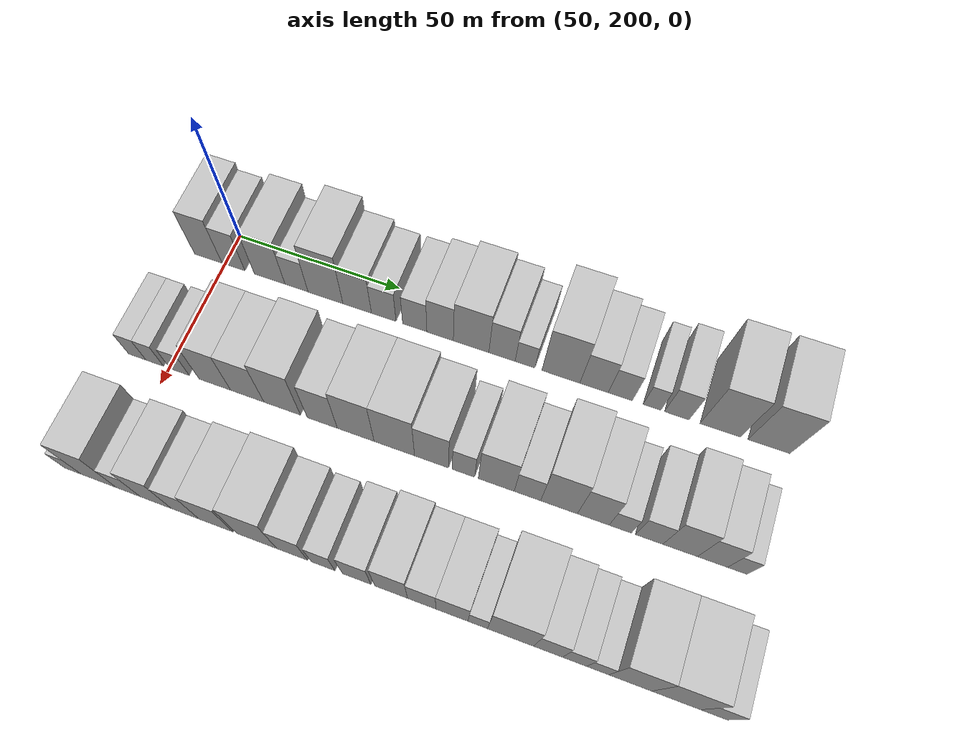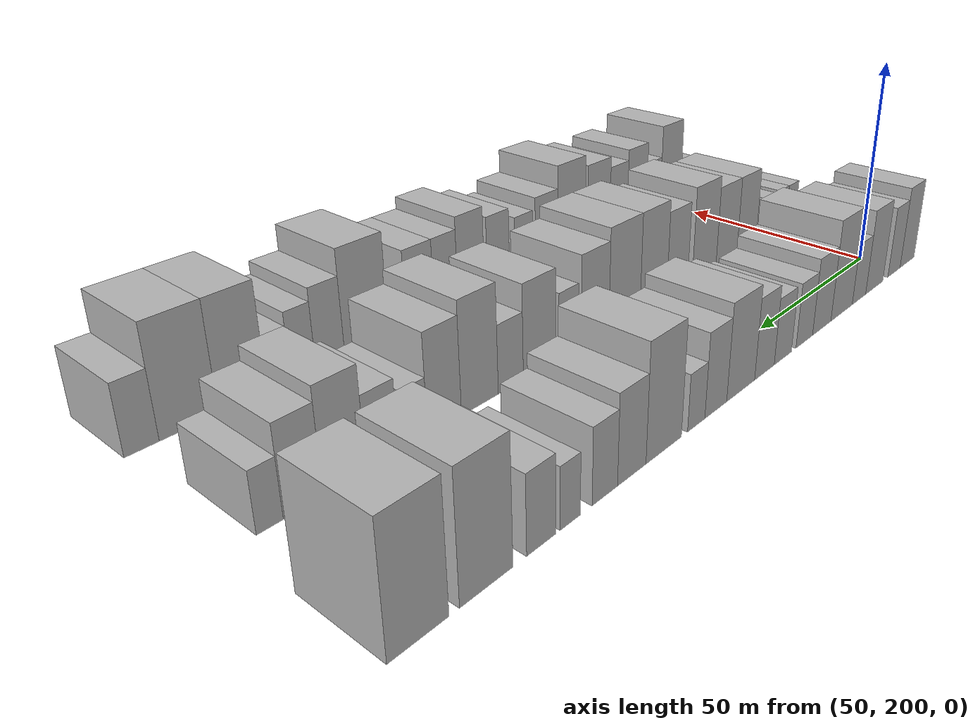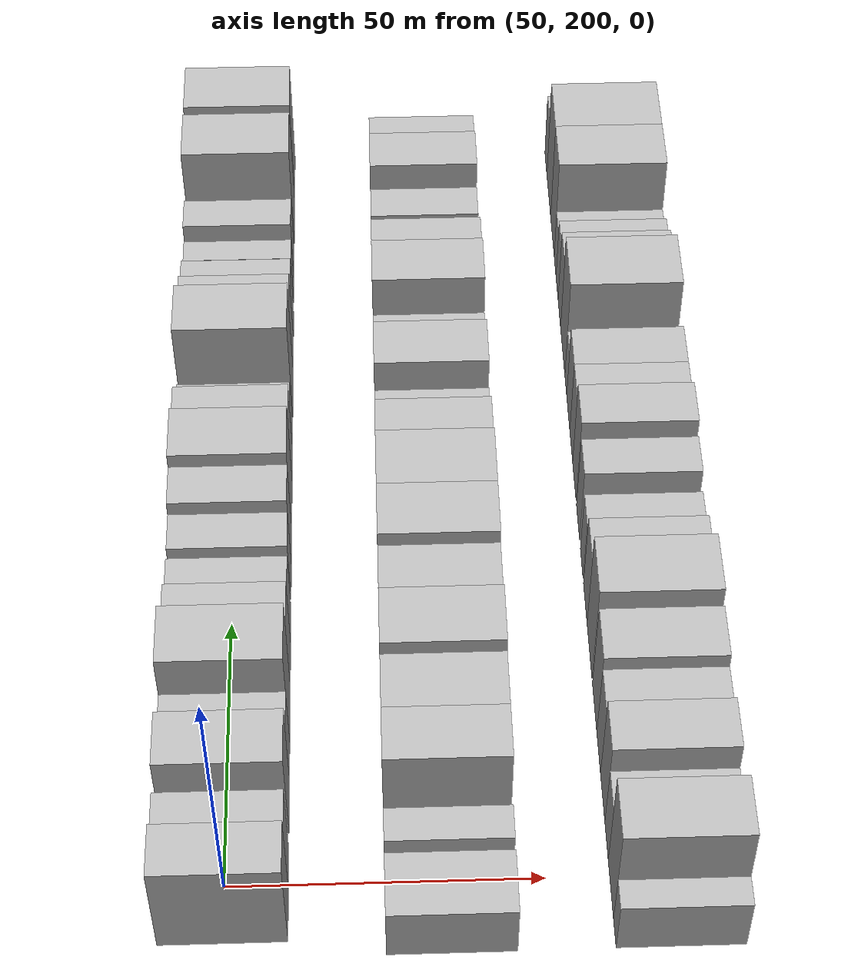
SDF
<sdf version="1.6">
 <world name="default">
  <model name="building_63">
   <static>1</static>
   <pose>50.0000 194.6372 0 0.000000 0.000000 0.000000</pose>
   <link name="link">
    <pose>0 0 10.50 0 0 0</pose>
    <collision name="collision"><geometry><box><size>20.0000 8.7773 21.0000</size></box></geometry></collision>
    <visual name="visual">
     <cast_shadows>0</cast_shadows>
     <geometry><box><size>20.0000 8.7773 21.0000</size></box></geometry>
     <material>
      <script>
       <uri>model://HANNAS_wall/materials/scripts</uri>
       <uri>model://HANNAS_wall/materials/textures</uri>
       <name>vrc/HANNAS_wall</name>
      </script>
     </material>
    </visual>
   </link>
  </model>
  <model name="building_64">
   <static>1</static>
   <pose>50.0000 202.6644 0 0.000000 0.000000 0.000000</pose>
   <link name="link">
    <pose>0 0 9.00 0 0 0</pose>
    <collision name="collision"><geometry><box><size>20.0000 7.2770 18.0000</size></box></geometry></collision>
    <visual name="visual">
     <cast_shadows>0</cast_shadows>
     <geometry><box><size>20.0000 7.2770 18.0000</size></box></geometry>
     <material>
      <script>
       <uri>model://HANNAS_wall/materials/scripts</uri>
       <uri>model://HANNAS_wall/materials/textures</uri>
       <name>vrc/HANNAS_wall</name>
      </script>
     </material>
    </visual>
   </link>
  </model>
  <model name="building_65">
   <static>1</static>
   <pose>50.0000 214.0967 0 0.000000 0.000000 0.000000</pose>
   <link name="link">
    <pose>0 0 10.50 0 0 0</pose>
    <collision name="collision"><geometry><box><size>20.0000 9.5875 21.0000</size></box></geometry></collision>
    <visual name="visual">
     <cast_shadows>0</cast_shadows>
     <geometry><box><size>20.0000 9.5875 21.0000</size></box></geometry>
     <material>
      <script>
       <uri>model://HANNAS_wall/materials/scripts</uri>
       <uri>model://HANNAS_wall/materials/textures</uri>
       <name>vrc/HANNAS_wall</name>
      </script>
     </material>
    </visual>
   </link>
  </model>
  <model name="building_66">
   <static>1</static>
   <pose>50.0000 222.4682 0 0.000000 0.000000 0.000000</pose>
   <link name="link">
    <pose>0 0 7.50 0 0 0</pose>
    <collision name="collision"><geometry><box><size>20.0000 7.1555 15.0000</size></box></geometry></collision>
    <visual name="visual">
     <cast_shadows>0</cast_shadows>
     <geometry><box><size>20.0000 7.1555 15.0000</size></box></geometry>
     <material>
      <script>
       <uri>model://HANNAS_wall/materials/scripts</uri>
       <uri>model://HANNAS_wall/materials/textures</uri>
       <name>vrc/HANNAS_wall</name>
      </script>
     </material>
    </visual>
   </link>
  </model>
  <model name="building_67">
   <static>1</static>
   <pose>50.0000 231.4179 0 0.000000 0.000000 0.000000</pose>
   <link name="link">
    <pose>0 0 12.00 0 0 0</pose>
    <collision name="collision"><geometry><box><size>20.0000 10.7441 24.0000</size></box></geometry></collision>
    <visual name="visual">
     <cast_shadows>0</cast_shadows>
     <geometry><box><size>20.0000 10.7441 24.0000</size></box></geometry>
     <material>
      <script>
       <uri>model://HANNAS_wall/materials/scripts</uri>
       <uri>model://HANNAS_wall/materials/textures</uri>
       <name>vrc/HANNAS_wall</name>
      </script>
     </material>
    </visual>
   </link>
  </model>
  <model name="building_68">
   <static>1</static>
   <pose>50.0000 241.1411 0 0.000000 0.000000 0.000000</pose>
   <link name="link">
    <pose>0 0 9.00 0 0 0</pose>
    <collision name="collision"><geometry><box><size>20.0000 8.7023 18.0000</size></box></geometry></collision>
    <visual name="visual">
     <cast_shadows>0</cast_shadows>
     <geometry><box><size>20.0000 8.7023 18.0000</size></box></geometry>
     <material>
      <script>
       <uri>model://HANNAS_wall/materials/scripts</uri>
       <uri>model://HANNAS_wall/materials/textures</uri>
       <name>vrc/HANNAS_wall</name>
      </script>
     </material>
    </visual>
   </link>
  </model>
  <model name="building_69">
   <static>1</static>
   <pose>50.0000 249.2045 0 0.000000 0.000000 0.000000</pose>
   <link name="link">
    <pose>0 0 7.50 0 0 0</pose>
    <collision name="collision"><geometry><box><size>20.0000 7.4245 15.0000</size></box></geometry></collision>
    <visual name="visual">
     <cast_shadows>0</cast_shadows>
     <geometry><box><size>20.0000 7.4245 15.0000</size></box></geometry>
     <material>
      <script>
       <uri>model://HANNAS_wall/materials/scripts</uri>
       <uri>model://HANNAS_wall/materials/textures</uri>
       <name>vrc/HANNAS_wall</name>
      </script>
     </material>
    </visual>
   </link>
  </model>
  <model name="building_70">
   <static>1</static>
   <pose>50.0000 258.5269 0 0.000000 0.000000 0.000000</pose>
   <link name="link">
    <pose>0 0 7.50 0 0 0</pose>
    <collision name="collision"><geometry><box><size>20.0000 7.2203 15.0000</size></box></geometry></collision>
    <visual name="visual">
     <cast_shadows>0</cast_shadows>
     <geometry><box><size>20.0000 7.2203 15.0000</size></box></geometry>
     <material>
      <script>
       <uri>model://HANNAS_wall/materials/scripts</uri>
       <uri>model://HANNAS_wall/materials/textures</uri>
       <name>vrc/HANNAS_wall</name>
      </script>
     </material>
    </visual>
   </link>
  </model>
  <model name="building_71">
   <static>1</static>
   <pose>50.0000 266.0517 0 0.000000 0.000000 0.000000</pose>
   <link name="link">
    <pose>0 0 9.00 0 0 0</pose>
    <collision name="collision"><geometry><box><size>20.0000 7.8293 18.0000</size></box></geometry></collision>
    <visual name="visual">
     <cast_shadows>0</cast_shadows>
     <geometry><box><size>20.0000 7.8293 18.0000</size></box></geometry>
     <material>
      <script>
       <uri>model://HANNAS_wall/materials/scripts</uri>
       <uri>model://HANNAS_wall/materials/textures</uri>
       <name>vrc/HANNAS_wall</name>
      </script>
     </material>
    </visual>
   </link>
  </model>
  <model name="building_72">
   <static>1</static>
   <pose>50.0000 275.1888 0 0.000000 0.000000 0.000000</pose>
   <link name="link">
    <pose>0 0 10.50 0 0 0</pose>
    <collision name="collision"><geometry><box><size>20.0000 10.4450 21.0000</size></box></geometry></collision>
    <visual name="visual">
     <cast_shadows>0</cast_shadows>
     <geometry><box><size>20.0000 10.4450 21.0000</size></box></geometry>
     <material>
      <script>
       <uri>model://HANNAS_wall/materials/scripts</uri>
       <uri>model://HANNAS_wall/materials/textures</uri>
       <name>vrc/HANNAS_wall</name>
      </script>
     </material>
    </visual>
   </link>
  </model>
  <model name="building_73">
   <static>1</static>
   <pose>50.0000 284.2256 0 0.000000 0.000000 0.000000</pose>
   <link name="link">
    <pose>0 0 9.00 0 0 0</pose>
    <collision name="collision"><geometry><box><size>20.0000 7.6284 18.0000</size></box></geometry></collision>
    <visual name="visual">
     <cast_shadows>0</cast_shadows>
     <geometry><box><size>20.0000 7.6284 18.0000</size></box></geometry>
     <material>
      <script>
       <uri>model://HANNAS_wall/materials/scripts</uri>
       <uri>model://HANNAS_wall/materials/textures</uri>
       <name>vrc/HANNAS_wall</name>
      </script>
     </material>
    </visual>
   </link>
  </model>
  <model name="building_74">
   <static>1</static>
   <pose>50.0000 290.9055 0 0.000000 0.000000 0.000000</pose>
   <link name="link">
    <pose>0 0 6.00 0 0 0</pose>
    <collision name="collision"><geometry><box><size>20.0000 5.7315 12.0000</size></box></geometry></collision>
    <visual name="visual">
     <cast_shadows>0</cast_shadows>
     <geometry><box><size>20.0000 5.7315 12.0000</size></box></geometry>
     <material>
      <script>
       <uri>model://HANNAS_wall/materials/scripts</uri>
       <uri>model://HANNAS_wall/materials/textures</uri>
       <name>vrc/HANNAS_wall</name>
      </script>
     </material>
    </visual>
   </link>
  </model>
  <model name="building_75">
   <static>1</static>
   <pose>50.0000 301.1852 0 0.000000 0.000000 0.000000</pose>
   <link name="link">
    <pose>0 0 12.00 0 0 0</pose>
    <collision name="collision"><geometry><box><size>20.0000 10.8279 24.0000</size></box></geometry></collision>
    <visual name="visual">
     <cast_shadows>0</cast_shadows>
     <geometry><box><size>20.0000 10.8279 24.0000</size></box></geometry>
     <material>
      <script>
       <uri>model://HANNAS_wall/materials/scripts</uri>
       <uri>model://HANNAS_wall/materials/textures</uri>
       <name>vrc/HANNAS_wall</name>
      </script>
     </material>
    </visual>
   </link>
  </model>
  <model name="building_76">
   <static>1</static>
   <pose>50.0000 310.6204 0 0.000000 0.000000 0.000000</pose>
   <link name="link">
    <pose>0 0 9.00 0 0 0</pose>
    <collision name="collision"><geometry><box><size>20.0000 8.0425 18.0000</size></box></geometry></collision>
    <visual name="visual">
     <cast_shadows>0</cast_shadows>
     <geometry><box><size>20.0000 8.0425 18.0000</size></box></geometry>
     <material>
      <script>
       <uri>model://HANNAS_wall/materials/scripts</uri>
       <uri>model://HANNAS_wall/materials/textures</uri>
       <name>vrc/HANNAS_wall</name>
      </script>
     </material>
    </visual>
   </link>
  </model>
  <model name="building_77">
   <static>1</static>
   <pose>50.0000 318.0080 0 0.000000 0.000000 0.000000</pose>
   <link name="link">
    <pose>0 0 7.50 0 0 0</pose>
    <collision name="collision"><geometry><box><size>20.0000 6.7326 15.0000</size></box></geometry></collision>
    <visual name="visual">
     <cast_shadows>0</cast_shadows>
     <geometry><box><size>20.0000 6.7326 15.0000</size></box></geometry>
     <material>
      <script>
       <uri>model://HANNAS_wall/materials/scripts</uri>
       <uri>model://HANNAS_wall/materials/textures</uri>
       <name>vrc/HANNAS_wall</name>
      </script>
     </material>
    </visual>
   </link>
  </model>
  <model name="building_78">
   <static>1</static>
   <pose>50.0000 326.8436 0 0.000000 0.000000 0.000000</pose>
   <link name="link">
    <pose>0 0 6.00 0 0 0</pose>
    <collision name="collision"><geometry><box><size>20.0000 4.9386 12.0000</size></box></geometry></collision>
    <visual name="visual">
     <cast_shadows>0</cast_shadows>
     <geometry><box><size>20.0000 4.9386 12.0000</size></box></geometry>
     <material>
      <script>
       <uri>model://HANNAS_wall/materials/scripts</uri>
       <uri>model://HANNAS_wall/materials/textures</uri>
       <name>vrc/HANNAS_wall</name>
      </script>
     </material>
    </visual>
   </link>
  </model>
  <model name="building_79">
   <static>1</static>
   <pose>50.0000 333.6942 0 0.000000 0.000000 0.000000</pose>
   <link name="link">
    <pose>0 0 7.50 0 0 0</pose>
    <collision name="collision"><geometry><box><size>20.0000 6.7625 15.0000</size></box></geometry></collision>
    <visual name="visual">
     <cast_shadows>0</cast_shadows>
     <geometry><box><size>20.0000 6.7625 15.0000</size></box></geometry>
     <material>
      <script>
       <uri>model://HANNAS_wall/materials/scripts</uri>
       <uri>model://HANNAS_wall/materials/textures</uri>
       <name>vrc/HANNAS_wall</name>
      </script>
     </material>
    </visual>
   </link>
  </model>
  <model name="building_80">
   <static>1</static>
   <pose>50.0000 345.5706 0 0.000000 0.000000 0.000000</pose>
   <link name="link">
    <pose>0 0 12.00 0 0 0</pose>
    <collision name="collision"><geometry><box><size>20.0000 10.9902 24.0000</size></box></geometry></collision>
    <visual name="visual">
     <cast_shadows>0</cast_shadows>
     <geometry><box><size>20.0000 10.9902 24.0000</size></box></geometry>
     <material>
      <script>
       <uri>model://HANNAS_wall/materials/scripts</uri>
       <uri>model://HANNAS_wall/materials/textures</uri>
       <name>vrc/HANNAS_wall</name>
      </script>
     </material>
    </visual>
   </link>
  </model>
  <model name="building_81">
   <static>1</static>
   <pose>50.0000 358.6743 0 0.000000 0.000000 0.000000</pose>
   <link name="link">
    <pose>0 0 12.00 0 0 0</pose>
    <collision name="collision"><geometry><box><size>20.0000 11.2172 24.0000</size></box></geometry></collision>
    <visual name="visual">
     <cast_shadows>0</cast_shadows>
     <geometry><box><size>20.0000 11.2172 24.0000</size></box></geometry>
     <material>
      <script>
       <uri>model://HANNAS_wall/materials/scripts</uri>
       <uri>model://HANNAS_wall/materials/textures</uri>
       <name>vrc/HANNAS_wall</name>
      </script>
     </material>
    </visual>
   </link>
  </model>
  <model name="building_142">
   <static>1</static>
   <pose>85.0000 190.2587 0 0.000000 0.000000 0.000000</pose>
   <link name="link">
    <pose>0 0 6.00 0 0 0</pose>
    <collision name="collision"><geometry><box><size>20.0000 5.3548 12.0000</size></box></geometry></collision>
    <visual name="visual">
     <cast_shadows>0</cast_shadows>
     <geometry><box><size>20.0000 5.3548 12.0000</size></box></geometry>
     <material>
      <script>
       <uri>model://HANNAS_wall/materials/scripts</uri>
       <uri>model://HANNAS_wall/materials/textures</uri>
       <name>vrc/HANNAS_wall</name>
      </script>
     </material>
    </visual>
   </link>
  </model>
  <model name="building_143">
   <static>1</static>
   <pose>85.0000 195.6254 0 0.000000 0.000000 0.000000</pose>
   <link name="link">
    <pose>0 0 6.00 0 0 0</pose>
    <collision name="collision"><geometry><box><size>20.0000 5.3787 12.0000</size></box></geometry></collision>
    <visual name="visual">
     <cast_shadows>0</cast_shadows>
     <geometry><box><size>20.0000 5.3787 12.0000</size></box></geometry>
     <material>
      <script>
       <uri>model://HANNAS_wall/materials/scripts</uri>
       <uri>model://HANNAS_wall/materials/textures</uri>
       <name>vrc/HANNAS_wall</name>
      </script>
     </material>
    </visual>
   </link>
  </model>
  <model name="building_144">
   <static>1</static>
   <pose>85.0000 203.2284 0 0.000000 0.000000 0.000000</pose>
   <link name="link">
    <pose>0 0 6.00 0 0 0</pose>
    <collision name="collision"><geometry><box><size>20.0000 5.8274 12.0000</size></box></geometry></collision>
    <visual name="visual">
     <cast_shadows>0</cast_shadows>
     <geometry><box><size>20.0000 5.8274 12.0000</size></box></geometry>
     <material>
      <script>
       <uri>model://HANNAS_wall/materials/scripts</uri>
       <uri>model://HANNAS_wall/materials/textures</uri>
       <name>vrc/HANNAS_wall</name>
      </script>
     </material>
    </visual>
   </link>
  </model>
  <model name="building_145">
   <static>1</static>
   <pose>85.0000 213.8984 0 0.000000 0.000000 0.000000</pose>
   <link name="link">
    <pose>0 0 10.50 0 0 0</pose>
    <collision name="collision"><geometry><box><size>20.0000 9.5124 21.0000</size></box></geometry></collision>
    <visual name="visual">
     <cast_shadows>0</cast_shadows>
     <geometry><box><size>20.0000 9.5124 21.0000</size></box></geometry>
     <material>
      <script>
       <uri>model://HANNAS_wall/materials/scripts</uri>
       <uri>model://HANNAS_wall/materials/textures</uri>
       <name>vrc/HANNAS_wall</name>
      </script>
     </material>
    </visual>
   </link>
  </model>
  <model name="building_146">
   <static>1</static>
   <pose>85.0000 223.6034 0 0.000000 0.000000 0.000000</pose>
   <link name="link">
    <pose>0 0 10.50 0 0 0</pose>
    <collision name="collision"><geometry><box><size>20.0000 9.8976 21.0000</size></box></geometry></collision>
    <visual name="visual">
     <cast_shadows>0</cast_shadows>
     <geometry><box><size>20.0000 9.8976 21.0000</size></box></geometry>
     <material>
      <script>
       <uri>model://HANNAS_wall/materials/scripts</uri>
       <uri>model://HANNAS_wall/materials/textures</uri>
       <name>vrc/HANNAS_wall</name>
      </script>
     </material>
    </visual>
   </link>
  </model>
  <model name="building_147">
   <static>1</static>
   <pose>85.0000 233.9112 0 0.000000 0.000000 0.000000</pose>
   <link name="link">
    <pose>0 0 12.00 0 0 0</pose>
    <collision name="collision"><geometry><box><size>20.0000 10.7180 24.0000</size></box></geometry></collision>
    <visual name="visual">
     <cast_shadows>0</cast_shadows>
     <geometry><box><size>20.0000 10.7180 24.0000</size></box></geometry>
     <material>
      <script>
       <uri>model://HANNAS_wall/materials/scripts</uri>
       <uri>model://HANNAS_wall/materials/textures</uri>
       <name>vrc/HANNAS_wall</name>
      </script>
     </material>
    </visual>
   </link>
  </model>
  <model name="building_148">
   <static>1</static>
   <pose>85.0000 245.6224 0 0.000000 0.000000 0.000000</pose>
   <link name="link">
    <pose>0 0 10.50 0 0 0</pose>
    <collision name="collision"><geometry><box><size>20.0000 8.7045 21.0000</size></box></geometry></collision>
    <visual name="visual">
     <cast_shadows>0</cast_shadows>
     <geometry><box><size>20.0000 8.7045 21.0000</size></box></geometry>
     <material>
      <script>
       <uri>model://HANNAS_wall/materials/scripts</uri>
       <uri>model://HANNAS_wall/materials/textures</uri>
       <name>vrc/HANNAS_wall</name>
      </script>
     </material>
    </visual>
   </link>
  </model>
  <model name="building_149">
   <static>1</static>
   <pose>85.0000 255.2530 0 0.000000 0.000000 0.000000</pose>
   <link name="link">
    <pose>0 0 12.00 0 0 0</pose>
    <collision name="collision"><geometry><box><size>20.0000 10.5565 24.0000</size></box></geometry></collision>
    <visual name="visual">
     <cast_shadows>0</cast_shadows>
     <geometry><box><size>20.0000 10.5565 24.0000</size></box></geometry>
     <material>
      <script>
       <uri>model://HANNAS_wall/materials/scripts</uri>
       <uri>model://HANNAS_wall/materials/textures</uri>
       <name>vrc/HANNAS_wall</name>
      </script>
     </material>
    </visual>
   </link>
  </model>
  <model name="building_150">
   <static>1</static>
   <pose>85.0000 266.2537 0 0.000000 0.000000 0.000000</pose>
   <link name="link">
    <pose>0 0 12.00 0 0 0</pose>
    <collision name="collision"><geometry><box><size>20.0000 11.4449 24.0000</size></box></geometry></collision>
    <visual name="visual">
     <cast_shadows>0</cast_shadows>
     <geometry><box><size>20.0000 11.4449 24.0000</size></box></geometry>
     <material>
      <script>
       <uri>model://HANNAS_wall/materials/scripts</uri>
       <uri>model://HANNAS_wall/materials/textures</uri>
       <name>vrc/HANNAS_wall</name>
      </script>
     </material>
    </visual>
   </link>
  </model>
  <model name="building_151">
   <static>1</static>
   <pose>85.0000 276.7346 0 0.000000 0.000000 0.000000</pose>
   <link name="link">
    <pose>0 0 10.50 0 0 0</pose>
    <collision name="collision"><geometry><box><size>20.0000 9.5169 21.0000</size></box></geometry></collision>
    <visual name="visual">
     <cast_shadows>0</cast_shadows>
     <geometry><box><size>20.0000 9.5169 21.0000</size></box></geometry>
     <material>
      <script>
       <uri>model://HANNAS_wall/materials/scripts</uri>
       <uri>model://HANNAS_wall/materials/textures</uri>
       <name>vrc/HANNAS_wall</name>
      </script>
     </material>
    </visual>
   </link>
  </model>
  <model name="building_152">
   <static>1</static>
   <pose>85.0000 285.6098 0 0.000000 0.000000 0.000000</pose>
   <link name="link">
    <pose>0 0 7.50 0 0 0</pose>
    <collision name="collision"><geometry><box><size>20.0000 6.2335 15.0000</size></box></geometry></collision>
    <visual name="visual">
     <cast_shadows>0</cast_shadows>
     <geometry><box><size>20.0000 6.2335 15.0000</size></box></geometry>
     <material>
      <script>
       <uri>model://HANNAS_wall/materials/scripts</uri>
       <uri>model://HANNAS_wall/materials/textures</uri>
       <name>vrc/HANNAS_wall</name>
      </script>
     </material>
    </visual>
   </link>
  </model>
  <model name="building_153">
   <static>1</static>
   <pose>85.0000 294.6538 0 0.000000 0.000000 0.000000</pose>
   <link name="link">
    <pose>0 0 10.50 0 0 0</pose>
    <collision name="collision"><geometry><box><size>20.0000 9.8545 21.0000</size></box></geometry></collision>
    <visual name="visual">
     <cast_shadows>0</cast_shadows>
     <geometry><box><size>20.0000 9.8545 21.0000</size></box></geometry>
     <material>
      <script>
       <uri>model://HANNAS_wall/materials/scripts</uri>
       <uri>model://HANNAS_wall/materials/textures</uri>
       <name>vrc/HANNAS_wall</name>
      </script>
     </material>
    </visual>
   </link>
  </model>
  <model name="building_154">
   <static>1</static>
   <pose>85.0000 303.1597 0 0.000000 0.000000 0.000000</pose>
   <link name="link">
    <pose>0 0 7.50 0 0 0</pose>
    <collision name="collision"><geometry><box><size>20.0000 7.1572 15.0000</size></box></geometry></collision>
    <visual name="visual">
     <cast_shadows>0</cast_shadows>
     <geometry><box><size>20.0000 7.1572 15.0000</size></box></geometry>
     <material>
      <script>
       <uri>model://HANNAS_wall/materials/scripts</uri>
       <uri>model://HANNAS_wall/materials/textures</uri>
       <name>vrc/HANNAS_wall</name>
      </script>
     </material>
    </visual>
   </link>
  </model>
  <model name="building_155">
   <static>1</static>
   <pose>85.0000 311.6816 0 0.000000 0.000000 0.000000</pose>
   <link name="link">
    <pose>0 0 12.00 0 0 0</pose>
    <collision name="collision"><geometry><box><size>20.0000 9.8867 24.0000</size></box></geometry></collision>
    <visual name="visual">
     <cast_shadows>0</cast_shadows>
     <geometry><box><size>20.0000 9.8867 24.0000</size></box></geometry>
     <material>
      <script>
       <uri>model://HANNAS_wall/materials/scripts</uri>
       <uri>model://HANNAS_wall/materials/textures</uri>
       <name>vrc/HANNAS_wall</name>
      </script>
     </material>
    </visual>
   </link>
  </model>
  <model name="building_156">
   <static>1</static>
   <pose>85.0000 320.8494 0 0.000000 0.000000 0.000000</pose>
   <link name="link">
    <pose>0 0 10.50 0 0 0</pose>
    <collision name="collision"><geometry><box><size>20.0000 8.4489 21.0000</size></box></geometry></collision>
    <visual name="visual">
     <cast_shadows>0</cast_shadows>
     <geometry><box><size>20.0000 8.4489 21.0000</size></box></geometry>
     <material>
      <script>
       <uri>model://HANNAS_wall/materials/scripts</uri>
       <uri>model://HANNAS_wall/materials/textures</uri>
       <name>vrc/HANNAS_wall</name>
      </script>
     </material>
    </visual>
   </link>
  </model>
  <model name="building_157">
   <static>1</static>
   <pose>85.0000 328.0253 0 0.000000 0.000000 0.000000</pose>
   <link name="link">
    <pose>0 0 6.00 0 0 0</pose>
    <collision name="collision"><geometry><box><size>20.0000 5.9028 12.0000</size></box></geometry></collision>
    <visual name="visual">
     <cast_shadows>0</cast_shadows>
     <geometry><box><size>20.0000 5.9028 12.0000</size></box></geometry>
     <material>
      <script>
       <uri>model://HANNAS_wall/materials/scripts</uri>
       <uri>model://HANNAS_wall/materials/textures</uri>
       <name>vrc/HANNAS_wall</name>
      </script>
     </material>
    </visual>
   </link>
  </model>
  <model name="building_158">
   <static>1</static>
   <pose>85.0000 335.5677 0 0.000000 0.000000 0.000000</pose>
   <link name="link">
    <pose>0 0 7.50 0 0 0</pose>
    <collision name="collision"><geometry><box><size>20.0000 7.1819 15.0000</size></box></geometry></collision>
    <visual name="visual">
     <cast_shadows>0</cast_shadows>
     <geometry><box><size>20.0000 7.1819 15.0000</size></box></geometry>
     <material>
      <script>
       <uri>model://HANNAS_wall/materials/scripts</uri>
       <uri>model://HANNAS_wall/materials/textures</uri>
       <name>vrc/HANNAS_wall</name>
      </script>
     </material>
    </visual>
   </link>
  </model>
  <model name="building_159">
   <static>1</static>
   <pose>85.0000 343.6272 0 0.000000 0.000000 0.000000</pose>
   <link name="link">
    <pose>0 0 10.50 0 0 0</pose>
    <collision name="collision"><geometry><box><size>20.0000 8.9371 21.0000</size></box></geometry></collision>
    <visual name="visual">
     <cast_shadows>0</cast_shadows>
     <geometry><box><size>20.0000 8.9371 21.0000</size></box></geometry>
     <material>
      <script>
       <uri>model://HANNAS_wall/materials/scripts</uri>
       <uri>model://HANNAS_wall/materials/textures</uri>
       <name>vrc/HANNAS_wall</name>
      </script>
     </material>
    </visual>
   </link>
  </model>
  <model name="building_160">
   <static>1</static>
   <pose>85.0000 351.9545 0 0.000000 0.000000 0.000000</pose>
   <link name="link">
    <pose>0 0 9.00 0 0 0</pose>
    <collision name="collision"><geometry><box><size>20.0000 7.7174 18.0000</size></box></geometry></collision>
    <visual name="visual">
     <cast_shadows>0</cast_shadows>
     <geometry><box><size>20.0000 7.7174 18.0000</size></box></geometry>
     <material>
      <script>
       <uri>model://HANNAS_wall/materials/scripts</uri>
       <uri>model://HANNAS_wall/materials/textures</uri>
       <name>vrc/HANNAS_wall</name>
      </script>
     </material>
    </visual>
   </link>
  </model>
  <model name="building_161">
   <static>1</static>
   <pose>85.0000 358.2892 0 0.000000 0.000000 0.000000</pose>
   <link name="link">
    <pose>0 0 6.00 0 0 0</pose>
    <collision name="collision"><geometry><box><size>20.0000 4.9520 12.0000</size></box></geometry></collision>
    <visual name="visual">
     <cast_shadows>0</cast_shadows>
     <geometry><box><size>20.0000 4.9520 12.0000</size></box></geometry>
     <material>
      <script>
       <uri>model://HANNAS_wall/materials/scripts</uri>
       <uri>model://HANNAS_wall/materials/textures</uri>
       <name>vrc/HANNAS_wall</name>
      </script>
     </material>
    </visual>
   </link>
  </model>
  <model name="building_222">
   <static>1</static>
   <pose>120.0000 190.1244 0 0.000000 0.000000 0.000000</pose>
   <link name="link">
    <pose>0 0 6.00 0 0 0</pose>
    <collision name="collision"><geometry><box><size>20.0000 4.9140 12.0000</size></box></geometry></collision>
    <visual name="visual">
     <cast_shadows>0</cast_shadows>
     <geometry><box><size>20.0000 4.9140 12.0000</size></box></geometry>
     <material>
      <script>
       <uri>model://HANNAS_wall/materials/scripts</uri>
       <uri>model://HANNAS_wall/materials/textures</uri>
       <name>vrc/HANNAS_wall</name>
      </script>
     </material>
    </visual>
   </link>
  </model>
  <model name="building_223">
   <static>1</static>
   <pose>120.0000 197.7302 0 0.000000 0.000000 0.000000</pose>
   <link name="link">
    <pose>0 0 12.00 0 0 0</pose>
    <collision name="collision"><geometry><box><size>20.0000 10.2977 24.0000</size></box></geometry></collision>
    <visual name="visual">
     <cast_shadows>0</cast_shadows>
     <geometry><box><size>20.0000 10.2977 24.0000</size></box></geometry>
     <material>
      <script>
       <uri>model://HANNAS_wall/materials/scripts</uri>
       <uri>model://HANNAS_wall/materials/textures</uri>
       <name>vrc/HANNAS_wall</name>
      </script>
     </material>
    </visual>
   </link>
  </model>
  <model name="building_224">
   <static>1</static>
   <pose>120.0000 206.3119 0 0.000000 0.000000 0.000000</pose>
   <link name="link">
    <pose>0 0 7.50 0 0 0</pose>
    <collision name="collision"><geometry><box><size>20.0000 6.8656 15.0000</size></box></geometry></collision>
    <visual name="visual">
     <cast_shadows>0</cast_shadows>
     <geometry><box><size>20.0000 6.8656 15.0000</size></box></geometry>
     <material>
      <script>
       <uri>model://HANNAS_wall/materials/scripts</uri>
       <uri>model://HANNAS_wall/materials/textures</uri>
       <name>vrc/HANNAS_wall</name>
      </script>
     </material>
    </visual>
   </link>
  </model>
  <model name="building_225">
   <static>1</static>
   <pose>120.0000 214.2057 0 0.000000 0.000000 0.000000</pose>
   <link name="link">
    <pose>0 0 10.50 0 0 0</pose>
    <collision name="collision"><geometry><box><size>20.0000 8.9221 21.0000</size></box></geometry></collision>
    <visual name="visual">
     <cast_shadows>0</cast_shadows>
     <geometry><box><size>20.0000 8.9221 21.0000</size></box></geometry>
     <material>
      <script>
       <uri>model://HANNAS_wall/materials/scripts</uri>
       <uri>model://HANNAS_wall/materials/textures</uri>
       <name>vrc/HANNAS_wall</name>
      </script>
     </material>
    </visual>
   </link>
  </model>
  <model name="building_226">
   <static>1</static>
   <pose>120.0000 222.6229 0 0.000000 0.000000 0.000000</pose>
   <link name="link">
    <pose>0 0 9.00 0 0 0</pose>
    <collision name="collision"><geometry><box><size>20.0000 7.9123 18.0000</size></box></geometry></collision>
    <visual name="visual">
     <cast_shadows>0</cast_shadows>
     <geometry><box><size>20.0000 7.9123 18.0000</size></box></geometry>
     <material>
      <script>
       <uri>model://HANNAS_wall/materials/scripts</uri>
       <uri>model://HANNAS_wall/materials/textures</uri>
       <name>vrc/HANNAS_wall</name>
      </script>
     </material>
    </visual>
   </link>
  </model>
  <model name="building_227">
   <static>1</static>
   <pose>120.0000 231.3872 0 0.000000 0.000000 0.000000</pose>
   <link name="link">
    <pose>0 0 10.50 0 0 0</pose>
    <collision name="collision"><geometry><box><size>20.0000 9.6162 21.0000</size></box></geometry></collision>
    <visual name="visual">
     <cast_shadows>0</cast_shadows>
     <geometry><box><size>20.0000 9.6162 21.0000</size></box></geometry>
     <material>
      <script>
       <uri>model://HANNAS_wall/materials/scripts</uri>
       <uri>model://HANNAS_wall/materials/textures</uri>
       <name>vrc/HANNAS_wall</name>
      </script>
     </material>
    </visual>
   </link>
  </model>
  <model name="building_228">
   <static>1</static>
   <pose>120.0000 242.7787 0 0.000000 0.000000 0.000000</pose>
   <link name="link">
    <pose>0 0 12.00 0 0 0</pose>
    <collision name="collision"><geometry><box><size>20.0000 11.1669 24.0000</size></box></geometry></collision>
    <visual name="visual">
     <cast_shadows>0</cast_shadows>
     <geometry><box><size>20.0000 11.1669 24.0000</size></box></geometry>
     <material>
      <script>
       <uri>model://HANNAS_wall/materials/scripts</uri>
       <uri>model://HANNAS_wall/materials/textures</uri>
       <name>vrc/HANNAS_wall</name>
      </script>
     </material>
    </visual>
   </link>
  </model>
  <model name="building_229">
   <static>1</static>
   <pose>120.0000 252.6024 0 0.000000 0.000000 0.000000</pose>
   <link name="link">
    <pose>0 0 9.00 0 0 0</pose>
    <collision name="collision"><geometry><box><size>20.0000 8.4804 18.0000</size></box></geometry></collision>
    <visual name="visual">
     <cast_shadows>0</cast_shadows>
     <geometry><box><size>20.0000 8.4804 18.0000</size></box></geometry>
     <material>
      <script>
       <uri>model://HANNAS_wall/materials/scripts</uri>
       <uri>model://HANNAS_wall/materials/textures</uri>
       <name>vrc/HANNAS_wall</name>
      </script>
     </material>
    </visual>
   </link>
  </model>
  <model name="building_230">
   <static>1</static>
   <pose>120.0000 261.0663 0 0.000000 0.000000 0.000000</pose>
   <link name="link">
    <pose>0 0 7.50 0 0 0</pose>
    <collision name="collision"><geometry><box><size>20.0000 6.4475 15.0000</size></box></geometry></collision>
    <visual name="visual">
     <cast_shadows>0</cast_shadows>
     <geometry><box><size>20.0000 6.4475 15.0000</size></box></geometry>
     <material>
      <script>
       <uri>model://HANNAS_wall/materials/scripts</uri>
       <uri>model://HANNAS_wall/materials/textures</uri>
       <name>vrc/HANNAS_wall</name>
      </script>
     </material>
    </visual>
   </link>
  </model>
  <model name="building_231">
   <static>1</static>
   <pose>120.0000 270.1306 0 0.000000 0.000000 0.000000</pose>
   <link name="link">
    <pose>0 0 9.00 0 0 0</pose>
    <collision name="collision"><geometry><box><size>20.0000 7.6810 18.0000</size></box></geometry></collision>
    <visual name="visual">
     <cast_shadows>0</cast_shadows>
     <geometry><box><size>20.0000 7.6810 18.0000</size></box></geometry>
     <material>
      <script>
       <uri>model://HANNAS_wall/materials/scripts</uri>
       <uri>model://HANNAS_wall/materials/textures</uri>
       <name>vrc/HANNAS_wall</name>
      </script>
     </material>
    </visual>
   </link>
  </model>
  <model name="building_232">
   <static>1</static>
   <pose>120.0000 279.3277 0 0.000000 0.000000 0.000000</pose>
   <link name="link">
    <pose>0 0 10.50 0 0 0</pose>
    <collision name="collision"><geometry><box><size>20.0000 8.7132 21.0000</size></box></geometry></collision>
    <visual name="visual">
     <cast_shadows>0</cast_shadows>
     <geometry><box><size>20.0000 8.7132 21.0000</size></box></geometry>
     <material>
      <script>
       <uri>model://HANNAS_wall/materials/scripts</uri>
       <uri>model://HANNAS_wall/materials/textures</uri>
       <name>vrc/HANNAS_wall</name>
      </script>
     </material>
    </visual>
   </link>
  </model>
  <model name="building_233">
   <static>1</static>
   <pose>120.0000 287.3818 0 0.000000 0.000000 0.000000</pose>
   <link name="link">
    <pose>0 0 9.00 0 0 0</pose>
    <collision name="collision"><geometry><box><size>20.0000 7.3951 18.0000</size></box></geometry></collision>
    <visual name="visual">
     <cast_shadows>0</cast_shadows>
     <geometry><box><size>20.0000 7.3951 18.0000</size></box></geometry>
     <material>
      <script>
       <uri>model://HANNAS_wall/materials/scripts</uri>
       <uri>model://HANNAS_wall/materials/textures</uri>
       <name>vrc/HANNAS_wall</name>
      </script>
     </material>
    </visual>
   </link>
  </model>
  <model name="building_234">
   <static>1</static>
   <pose>120.0000 295.2759 0 0.000000 0.000000 0.000000</pose>
   <link name="link">
    <pose>0 0 9.00 0 0 0</pose>
    <collision name="collision"><geometry><box><size>20.0000 8.3931 18.0000</size></box></geometry></collision>
    <visual name="visual">
     <cast_shadows>0</cast_shadows>
     <geometry><box><size>20.0000 8.3931 18.0000</size></box></geometry>
     <material>
      <script>
       <uri>model://HANNAS_wall/materials/scripts</uri>
       <uri>model://HANNAS_wall/materials/textures</uri>
       <name>vrc/HANNAS_wall</name>
      </script>
     </material>
    </visual>
   </link>
  </model>
  <model name="building_235">
   <static>1</static>
   <pose>120.0000 301.9731 0 0.000000 0.000000 0.000000</pose>
   <link name="link">
    <pose>0 0 6.00 0 0 0</pose>
    <collision name="collision"><geometry><box><size>20.0000 5.0014 12.0000</size></box></geometry></collision>
    <visual name="visual">
     <cast_shadows>0</cast_shadows>
     <geometry><box><size>20.0000 5.0014 12.0000</size></box></geometry>
     <material>
      <script>
       <uri>model://HANNAS_wall/materials/scripts</uri>
       <uri>model://HANNAS_wall/materials/textures</uri>
       <name>vrc/HANNAS_wall</name>
      </script>
     </material>
    </visual>
   </link>
  </model>
  <model name="building_236">
   <static>1</static>
   <pose>120.0000 310.4004 0 0.000000 0.000000 0.000000</pose>
   <link name="link">
    <pose>0 0 12.00 0 0 0</pose>
    <collision name="collision"><geometry><box><size>20.0000 11.8532 24.0000</size></box></geometry></collision>
    <visual name="visual">
     <cast_shadows>0</cast_shadows>
     <geometry><box><size>20.0000 11.8532 24.0000</size></box></geometry>
     <material>
      <script>
       <uri>model://HANNAS_wall/materials/scripts</uri>
       <uri>model://HANNAS_wall/materials/textures</uri>
       <name>vrc/HANNAS_wall</name>
      </script>
     </material>
    </visual>
   </link>
  </model>
  <model name="building_237">
   <static>1</static>
   <pose>120.0000 319.9729 0 0.000000 0.000000 0.000000</pose>
   <link name="link">
    <pose>0 0 9.00 0 0 0</pose>
    <collision name="collision"><geometry><box><size>20.0000 7.2918 18.0000</size></box></geometry></collision>
    <visual name="visual">
     <cast_shadows>0</cast_shadows>
     <geometry><box><size>20.0000 7.2918 18.0000</size></box></geometry>
     <material>
      <script>
       <uri>model://HANNAS_wall/materials/scripts</uri>
       <uri>model://HANNAS_wall/materials/textures</uri>
       <name>vrc/HANNAS_wall</name>
      </script>
     </material>
    </visual>
   </link>
  </model>
  <model name="building_238">
   <static>1</static>
   <pose>120.0000 326.6345 0 0.000000 0.000000 0.000000</pose>
   <link name="link">
    <pose>0 0 7.50 0 0 0</pose>
    <collision name="collision"><geometry><box><size>20.0000 6.0314 15.0000</size></box></geometry></collision>
    <visual name="visual">
     <cast_shadows>0</cast_shadows>
     <geometry><box><size>20.0000 6.0314 15.0000</size></box></geometry>
     <material>
      <script>
       <uri>model://HANNAS_wall/materials/scripts</uri>
       <uri>model://HANNAS_wall/materials/textures</uri>
       <name>vrc/HANNAS_wall</name>
      </script>
     </material>
    </visual>
   </link>
  </model>
  <model name="building_239">
   <static>1</static>
   <pose>120.0000 332.3789 0 0.000000 0.000000 0.000000</pose>
   <link name="link">
    <pose>0 0 6.00 0 0 0</pose>
    <collision name="collision"><geometry><box><size>20.0000 5.4575 12.0000</size></box></geometry></collision>
    <visual name="visual">
     <cast_shadows>0</cast_shadows>
     <geometry><box><size>20.0000 5.4575 12.0000</size></box></geometry>
     <material>
      <script>
       <uri>model://HANNAS_wall/materials/scripts</uri>
       <uri>model://HANNAS_wall/materials/textures</uri>
       <name>vrc/HANNAS_wall</name>
      </script>
     </material>
    </visual>
   </link>
  </model>
  <model name="building_240">
   <static>1</static>
   <pose>120.0000 340.4174 0 0.000000 0.000000 0.000000</pose>
   <link name="link">
    <pose>0 0 12.00 0 0 0</pose>
    <collision name="collision"><geometry><box><size>20.0000 10.6194 24.0000</size></box></geometry></collision>
    <visual name="visual">
     <cast_shadows>0</cast_shadows>
     <geometry><box><size>20.0000 10.6194 24.0000</size></box></geometry>
     <material>
      <script>
       <uri>model://HANNAS_wall/materials/scripts</uri>
       <uri>model://HANNAS_wall/materials/textures</uri>
       <name>vrc/HANNAS_wall</name>
      </script>
     </material>
    </visual>
   </link>
  </model>
  <model name="building_241">
   <static>1</static>
   <pose>120.0000 351.6342 0 0.000000 0.000000 0.000000</pose>
   <link name="link">
    <pose>0 0 12.00 0 0 0</pose>
    <collision name="collision"><geometry><box><size>20.0000 11.8143 24.0000</size></box></geometry></collision>
    <visual name="visual">
     <cast_shadows>0</cast_shadows>
     <geometry><box><size>20.0000 11.8143 24.0000</size></box></geometry>
     <material>
      <script>
       <uri>model://HANNAS_wall/materials/scripts</uri>
       <uri>model://HANNAS_wall/materials/textures</uri>
       <name>vrc/HANNAS_wall</name>
      </script>
     </material>
    </visual>
   </link>
  </model>
  <model name="building_242">
   <static>1</static>
   <pose>120.0000 360.8323 0 0.000000 0.000000 0.000000</pose>
   <link name="link">
    <pose>0 0 7.50 0 0 0</pose>
    <collision name="collision"><geometry><box><size>20.0000 6.5818 15.0000</size></box></geometry></collision>
    <visual name="visual">
     <cast_shadows>0</cast_shadows>
     <geometry><box><size>20.0000 6.5818 15.0000</size></box></geometry>
     <material>
      <script>
       <uri>model://HANNAS_wall/materials/scripts</uri>
       <uri>model://HANNAS_wall/materials/textures</uri>
       <name>vrc/HANNAS_wall</name>
      </script>
     </material>
    </visual>
   </link>
  </model>
 </world>
</sdf>
